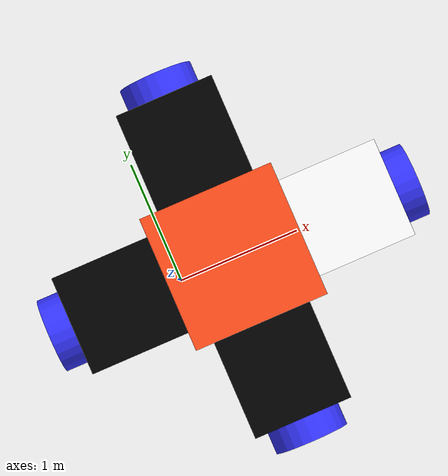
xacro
<?xml version="1.0"?>

<robot xmlns:xacro="http://www.ros.org/wiki/xacro" >

    <xacro:include filename="inertial_macros.xacro" />

    <material name="white">
        <color rgba="1 1 1 1" />
    </material>

    <material name="orange">
        <color rgba="1 0.3 0.1 1"/>
    </material>

    <material name="blue">
        <color rgba="0.2 0.2 1 1"/>
    </material>

    <material name="black">
        <color rgba="0 0 0 1"/>
    </material>

    <material name="red">
        <color rgba="1 0 0 1"/>
    </material>

    <link name="base_link">

    </link>

    <!--Chassis-->

    <joint name= "chassis_joint" type="fixed">
        <parent link="base_link"/>
        <child link="chassis"/>
        <origin xyz="-0.1 0 0"/>
    </joint>

    <link name="chassis">
        <visual>
            <origin xyz="0.55 0 0.3"/>
            <geometry>
                <box size="1.1 1.1 0.6"/>
            </geometry>
            <material name="orange"/>
        </visual>
        <collision>
            <origin xyz="0.55 0 0.3"/>
            <geometry>
                <box size="1.1 1.1 0.6"/>
            </geometry>
        </collision>
        <xacro:inertial_box mass="0.5" x="1.1" y="1.1" z="0.6">
            <origin xyz="0.55 0 0.3" rpy="0 0 0"/>
        </xacro:inertial_box>
    </link>

    <gazebo reference="chassis">
        <material>Gazebo/Orange</material>
    </gazebo>

    <!--bloc avant-->

    <joint name= "bloc_avant_joint" type="fixed">
        <parent link="chassis"/>
        <child link="bloc_avant"/>
        <origin xyz="1.1 0 0"/>
    </joint>

    <link name="bloc_avant">
        <visual>
            <origin xyz="0.4 0 0.3"/>
            <geometry>
                <box size="0.8 0.8 0.6"/>
            </geometry>
            <material name="white"/>
        </visual>
        <collision>
            <origin xyz="0.4 0 0.3"/>
            <geometry>
                <box size="0.8 0.8 0.6"/>
            </geometry>
        </collision>
        <xacro:inertial_box mass="0.5" x="0.8" y="0.8" z="0.6">
            <origin xyz="0.4 0 0.3" rpy="0 0 0"/>
        </xacro:inertial_box>
    </link>

    <gazebo reference="bloc_avant">
        <material>Gazebo/White</material>
    </gazebo>

    <!--bloc arriere-->

    <joint name= "bloc_arriere_joint" type="fixed">
        <parent link="chassis"/>
        <child link="bloc_arriere"/>
        <origin xyz="-0.8 0 0"/>
    </joint>

    <link name="bloc_arriere">
        <visual>
            <origin xyz="0.4 0 0.3"/>
            <geometry>
                <box size="0.8 0.8 0.6"/>
            </geometry>
            <material name="black"/>
        </visual>
        <collision>
            <origin xyz="0.4 0 0.3"/>
            <geometry>
                <box size="0.8 0.8 0.6"/>
            </geometry>
        </collision>
        <xacro:inertial_box mass="0.5" x="0.8" y="0.8" z="0.6">
            <origin xyz="0.4 0 0.3" rpy="0 0 0"/>
        </xacro:inertial_box>
    </link>

    <gazebo reference="bloc_arriere">
        <material>Gazebo/Black</material>
    </gazebo>

    <!--bloc gauche-->

    <joint name= "bloc_gauche_joint" type="fixed">
        <parent link="chassis"/>
        <child link="bloc_gauche"/>
        <origin xyz="0.15 0.95 0"/>
    </joint>

    <link name="bloc_gauche">
        <visual>
            <origin xyz="0.4 0 0.3"/>
            <geometry>
                <box size="0.8 0.8 0.6"/>
            </geometry>
            <material name="black"/>
        </visual>
        <collision>
            <origin xyz="0.4 0 0.3"/>
            <geometry>
                <box size="0.8 0.8 0.6"/>
            </geometry>
        </collision>
        <xacro:inertial_box mass="0.5" x="0.8" y="0.8" z="0.6">
            <origin xyz="0.4 0 0.3" rpy="0 0 0"/>
        </xacro:inertial_box>
    </link>

    <gazebo reference="bloc_gauche">
        <material>Gazebo/Black</material>
    </gazebo>

    <!--bloc droit-->

    <joint name= "bloc_droit_joint" type="fixed">
        <parent link="chassis"/>
        <child link="bloc_droit"/>
        <origin xyz="0.15 -0.95 0"/>
    </joint>

    <link name="bloc_droit">
        <visual>
            <origin xyz="0.4 0 0.3"/>
            <geometry>
                <box size="0.8 0.8 0.6"/>
            </geometry>
            <material name="black"/>
        </visual>
        <collision>
            <origin xyz="0.4 0 0.3"/>
            <geometry>
                <box size="0.8 0.8 0.6"/>
            </geometry>
        </collision>
        <xacro:inertial_box mass="0.5" x="0.8" y="0.8" z="0.6">
            <origin xyz="0.4 0 0.3" rpy="0 0 0"/>
        </xacro:inertial_box>
    </link>

    <gazebo reference="bloc_droit">
        <material>Gazebo/Black</material>
    </gazebo>

    <!--roue droite-->

    <joint name= "roue_droite_joint" type="continuous">
        <parent link="bloc_droit"/>
        <child link="roue_droite"/>
        <origin xyz="0.4 -0.5 0.2" rpy="-${pi/2} 0 0"/>
        <axis xyz="0 0 1"/>
    </joint>

    <link name='roue_droite'>
        <visual>
            <material name="blue"/>
            <geometry>
                <cylinder radius="0.3" length="0.2"/>
            </geometry>
        </visual>
        <collision>
            <geometry>
                <cylinder radius="0.3" length="0.2"/>
            </geometry>
        </collision>
        <xacro:inertial_cylinder mass="0.1" radius="0.3" length="0.2">
            <origin xyz="0 0 0" rpy="0 0 0"/>
        </xacro:inertial_cylinder>
    </link>

    <gazebo reference="roue_droite">
        <material>Gazebo/Blue</material>
    </gazebo>

    <!--roue gauche-->

    <joint name= "roue_gauche_joint" type="continuous">
        <parent link="bloc_gauche"/>
        <child link="roue_gauche"/>
        <origin xyz="0.4 0.5 0.2" rpy="-${pi/2} 0 0"/>
        <axis xyz="0 0 1"/>
    </joint>

    <link name='roue_gauche'>
        <visual>
            <material name="blue"/>
            <geometry>
                <cylinder radius="0.3" length="0.2"/>
            </geometry>
        </visual>
        <collision>
            <geometry>
                <cylinder radius="0.3" length="0.2"/>
            </geometry>
        </collision>
        <xacro:inertial_cylinder mass="0.1" radius="0.3" length="0.2">
            <origin xyz="0 0 0" rpy="0 0 0"/>
        </xacro:inertial_cylinder>
    </link>

    <gazebo reference="roue_gauche">
        <material>Gazebo/Blue</material>
    </gazebo>

    <!--roue avant-->

    <joint name= "roue_avant_joint" type="continuous">
        <parent link="bloc_avant"/>
        <child link="roue_avant"/>
        <origin xyz="0.9 0 0.2" rpy="0 ${pi/2} 0"/>
        <axis xyz="0 0 1"/>
    </joint>

    <link name='roue_avant'>
        <visual>
            <material name="blue"/>
            <geometry>
                <cylinder radius="0.3" length="0.2"/>
            </geometry>
        </visual>
        <collision>
            <geometry>
                <cylinder radius="0.3" length="0.2"/>
            </geometry>
        </collision>
        <xacro:inertial_cylinder mass="0.1" radius="0.3" length="0.2">
            <origin xyz="0 0 0" rpy="0 0 0"/>
        </xacro:inertial_cylinder>
    </link>

    <gazebo reference="roue_avant">
        <material>Gazebo/Blue</material>
    </gazebo>

    <!--roue arriere-->

    <joint name= "roue_arriere_joint" type="continuous">
        <parent link="bloc_arriere"/>
        <child link="roue_arriere"/>
        <origin xyz="-0.1 0 0.2" rpy="0 ${pi/2} 0"/>
        <axis xyz="0 0 1"/>
    </joint>

    <link name='roue_arriere'>
        <visual>
            <material name="blue"/>
            <geometry>
                <cylinder radius="0.3" length="0.2"/>
            </geometry>
        </visual>
        <collision>
            <geometry>
                <cylinder radius="0.3" length="0.2"/>
            </geometry>
        </collision>
        <xacro:inertial_cylinder mass="0.1" radius="0.3" length="0.2">
            <origin xyz="0 0 0" rpy="0 0 0"/>
        </xacro:inertial_cylinder>
    </link>

    <gazebo reference="roue_arriere">
        <material>Gazebo/Blue</material>
    </gazebo>

</robot>
